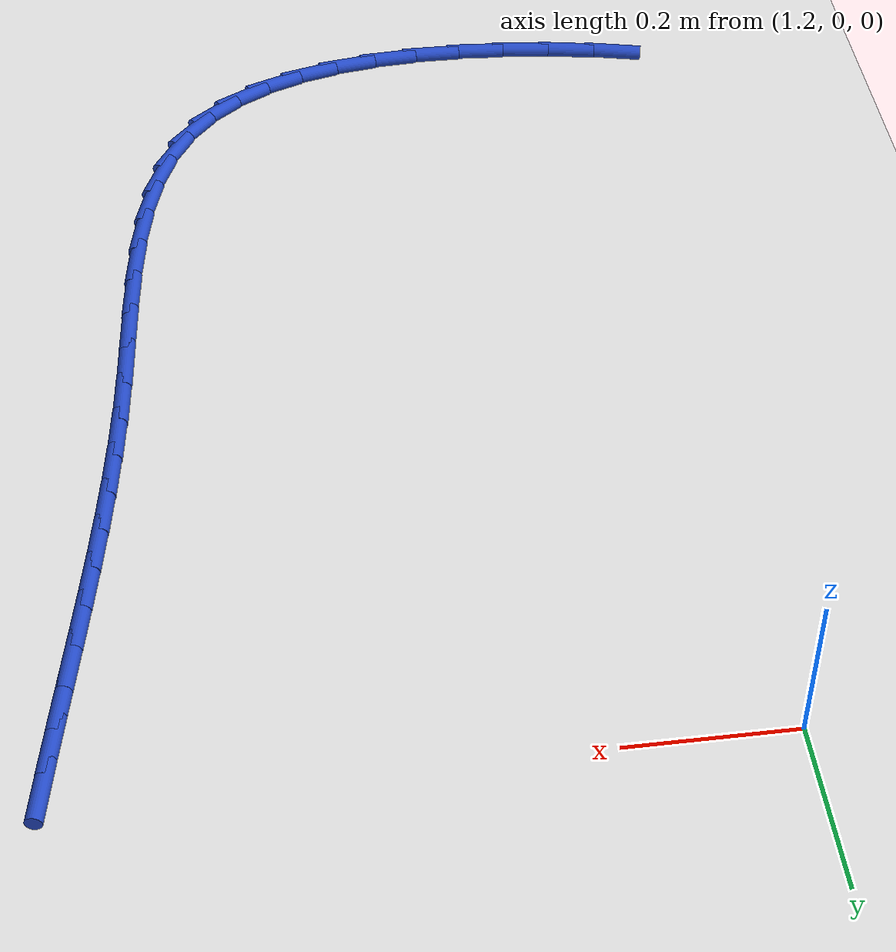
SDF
<sdf version="1.6">
 <world name="default">
  <model name="ground_plane">
   <static>1</static>
   <link name="link">
    <collision name="collision">
     <geometry><plane><normal>0 0 1</normal><size>100 100</size></plane></geometry>
     <surface><friction><ode><mu>100</mu><mu2>50</mu2></ode></friction></surface>
    </collision>
    <visual name="visual">
     <cast_shadows>0</cast_shadows>
     <geometry><plane><normal>0 0 1</normal><size>100 100</size></plane></geometry>
     <material>
      <script><uri>file://media/materials/scripts/gazebo.material</uri><name>Gazebo/WhiteGlow</name></script>
     </material>
    </visual>
   </link>
  </model>
  <model name="line">
   <link name="link_59">
    <pose>2.0095843211323805 -0.0143529401476441 0.01 0 1.57 1.3791129398174573</pose>
    <collision name="collision">
     <geometry><cylinder><radius>0.01</radius><length>0.08</length></cylinder></geometry>
    </collision>
    <visual name="visual">
     <material>
      <script><name>Gazebo/Blue</name><uri>file://media/materials/scripts/gazebo.material</uri></script>
     </material>
     <geometry><cylinder><radius>0.01</radius><length>0.08</length></cylinder></geometry>
    </visual>
   </link>
   <link name="link_60">
    <pose>1.9986518471679842 -0.07068671770957302 0.01 0 1.57 1.3734236351412863</pose>
    <collision name="collision">
     <geometry><cylinder><radius>0.01</radius><length>0.08</length></cylinder></geometry>
    </collision>
    <visual name="visual">
     <material>
      <script><name>Gazebo/Blue</name><uri>file://media/materials/scripts/gazebo.material</uri></script>
     </material>
     <geometry><cylinder><radius>0.01</radius><length>0.08</length></cylinder></geometry>
    </visual>
   </link>
   <link name="link_61">
    <pose>1.9874972401100446 -0.12646638598702598 0.01 0 1.57 1.3711099750935012</pose>
    <collision name="collision">
     <geometry><cylinder><radius>0.01</radius><length>0.08</length></cylinder></geometry>
    </collision>
    <visual name="visual">
     <material>
      <script><name>Gazebo/Blue</name><uri>file://media/materials/scripts/gazebo.material</uri></script>
     </material>
     <geometry><cylinder><radius>0.01</radius><length>0.08</length></cylinder></geometry>
    </visual>
   </link>
   <link name="link_62">
    <pose>1.9762726870712621 -0.18192817978360254 0.01 0 1.57 1.372250226316741</pose>
    <collision name="collision">
     <geometry><cylinder><radius>0.01</radius><length>0.08</length></cylinder></geometry>
    </collision>
    <visual name="visual">
     <material>
      <script><name>Gazebo/Blue</name><uri>file://media/materials/scripts/gazebo.material</uri></script>
     </material>
     <geometry><cylinder><radius>0.01</radius><length>0.08</length></cylinder></geometry>
    </visual>
   </link>
   <link name="link_63">
    <pose>1.965130375164333 -0.23730833390290268 0.01 0 1.57 1.3768497979431304</pose>
    <collision name="collision">
     <geometry><cylinder><radius>0.01</radius><length>0.08</length></cylinder></geometry>
    </collision>
    <visual name="visual">
     <material>
      <script><name>Gazebo/Blue</name><uri>file://media/materials/scripts/gazebo.material</uri></script>
     </material>
     <geometry><cylinder><radius>0.01</radius><length>0.08</length></cylinder></geometry>
    </visual>
   </link>
   <link name="link_64">
    <pose>1.9542224915019566 -0.2928430831485239 0.01 0 1.57 1.3848400308713296</pose>
    <collision name="collision">
     <geometry><cylinder><radius>0.01</radius><length>0.08</length></cylinder></geometry>
    </collision>
    <visual name="visual">
     <material>
      <script><name>Gazebo/Blue</name><uri>file://media/materials/scripts/gazebo.material</uri></script>
     </material>
     <geometry><cylinder><radius>0.01</radius><length>0.08</length></cylinder></geometry>
    </visual>
   </link>
   <link name="link_65">
    <pose>1.9437012231968303 -0.3487686623240661 0.01 0 1.57 1.3960797561616065</pose>
    <collision name="collision">
     <geometry><cylinder><radius>0.01</radius><length>0.08</length></cylinder></geometry>
    </collision>
    <visual name="visual">
     <material>
      <script><name>Gazebo/Blue</name><uri>file://media/materials/scripts/gazebo.material</uri></script>
     </material>
     <geometry><cylinder><radius>0.01</radius><length>0.08</length></cylinder></geometry>
    </visual>
   </link>
   <link name="link_66">
    <pose>1.9337187573616537 -0.40532130623312956 0.01 0 1.57 1.4103597302290953</pose>
    <collision name="collision">
     <geometry><cylinder><radius>0.01</radius><length>0.08</length></cylinder></geometry>
    </collision>
    <visual name="visual">
     <material>
      <script><name>Gazebo/Blue</name><uri>file://media/materials/scripts/gazebo.material</uri></script>
     </material>
     <geometry><cylinder><radius>0.01</radius><length>0.08</length></cylinder></geometry>
    </visual>
   </link>
   <link name="link_67">
    <pose>1.9244272811091234 -0.4627372496793114 0.01 0 1.57 1.4274099557024162</pose>
    <collision name="collision">
     <geometry><cylinder><radius>0.01</radius><length>0.08</length></cylinder></geometry>
    </collision>
    <visual name="visual">
     <material>
      <script><name>Gazebo/Blue</name><uri>file://media/materials/scripts/gazebo.material</uri></script>
     </material>
     <geometry><cylinder><radius>0.01</radius><length>0.08</length></cylinder></geometry>
    </visual>
   </link>
   <link name="link_68">
    <pose>1.9159789815519386 -0.521252727466212 0.01 0 1.57 1.446909722734398</pose>
    <collision name="collision">
     <geometry><cylinder><radius>0.01</radius><length>0.08</length></cylinder></geometry>
    </collision>
    <visual name="visual">
     <material>
      <script><name>Gazebo/Blue</name><uri>file://media/materials/scripts/gazebo.material</uri></script>
     </material>
     <geometry><cylinder><radius>0.01</radius><length>0.08</length></cylinder></geometry>
    </visual>
   </link>
   <link name="link_69">
    <pose>1.9085260458027968 -0.5811039743974301 0.01 0 1.57 1.4679009209417226</pose>
    <collision name="collision">
     <geometry><cylinder><radius>0.01</radius><length>0.08</length></cylinder></geometry>
    </collision>
    <visual name="visual">
     <material>
      <script><name>Gazebo/Blue</name><uri>file://media/materials/scripts/gazebo.material</uri></script>
     </material>
     <geometry><cylinder><radius>0.01</radius><length>0.08</length></cylinder></geometry>
    </visual>
   </link>
   <link name="link_70">
    <pose>1.9021872250785887 -0.6424909156907206 0.01 0 1.57 1.4802898391643775</pose>
    <collision name="collision">
     <geometry><cylinder><radius>0.01</radius><length>0.08</length></cylinder></geometry>
    </collision>
    <visual name="visual">
     <material>
      <script><name>Gazebo/Blue</name><uri>file://media/materials/scripts/gazebo.material</uri></script>
     </material>
     <geometry><cylinder><radius>0.01</radius><length>0.08</length></cylinder></geometry>
    </visual>
   </link>
   <link name="link_71">
    <pose>1.8965144372523848 -0.7049979260167341 0.01 0 1.57 1.4765286924217311</pose>
    <collision name="collision">
     <geometry><cylinder><radius>0.01</radius><length>0.08</length></cylinder></geometry>
    </collision>
    <visual name="visual">
     <material>
      <script><name>Gazebo/Blue</name><uri>file://media/materials/scripts/gazebo.material</uri></script>
     </material>
     <geometry><cylinder><radius>0.01</radius><length>0.08</length></cylinder></geometry>
    </visual>
   </link>
   <link name="link_72">
    <pose>1.8905865039661023 -0.767695622965504 0.01 0 1.57 1.4563745280890752</pose>
    <collision name="collision">
     <geometry><cylinder><radius>0.01</radius><length>0.08</length></cylinder></geometry>
    </collision>
    <visual name="visual">
     <material>
      <script><name>Gazebo/Blue</name><uri>file://media/materials/scripts/gazebo.material</uri></script>
     </material>
     <geometry><cylinder><radius>0.01</radius><length>0.08</length></cylinder></geometry>
    </visual>
   </link>
   <link name="link_73">
    <pose>1.8834677506340605 -0.8296388820029886 0.01 0 1.57 1.4185201867658899</pose>
    <collision name="collision">
     <geometry><cylinder><radius>0.01</radius><length>0.08</length></cylinder></geometry>
    </collision>
    <visual name="visual">
     <material>
      <script><name>Gazebo/Blue</name><uri>file://media/materials/scripts/gazebo.material</uri></script>
     </material>
     <geometry><cylinder><radius>0.01</radius><length>0.08</length></cylinder></geometry>
    </visual>
   </link>
   <link name="link_74">
    <pose>1.8742225026705797 -0.8898825785951471 0.01 0 1.57 1.3602878190782957</pose>
    <collision name="collision">
     <geometry><cylinder><radius>0.01</radius><length>0.08</length></cylinder></geometry>
    </collision>
    <visual name="visual">
     <material>
      <script><name>Gazebo/Blue</name><uri>file://media/materials/scripts/gazebo.material</uri></script>
     </material>
     <geometry><cylinder><radius>0.01</radius><length>0.08</length></cylinder></geometry>
    </visual>
   </link>
   <link name="link_75">
    <pose>1.8619150854899804 -0.9474815882079358 0.01 0 1.57 1.2775992929452322</pose>
    <collision name="collision">
     <geometry><cylinder><radius>0.01</radius><length>0.08</length></cylinder></geometry>
    </collision>
    <visual name="visual">
     <material>
      <script><name>Gazebo/Blue</name><uri>file://media/materials/scripts/gazebo.material</uri></script>
     </material>
     <geometry><cylinder><radius>0.01</radius><length>0.08</length></cylinder></geometry>
    </visual>
   </link>
   <link name="link_76">
    <pose>1.8456098245065828 -1.0014907863073144 0.01 0 1.57 1.1652980832420208</pose>
    <collision name="collision">
     <geometry><cylinder><radius>0.01</radius><length>0.08</length></cylinder></geometry>
    </collision>
    <visual name="visual">
     <material>
      <script><name>Gazebo/Blue</name><uri>file://media/materials/scripts/gazebo.material</uri></script>
     </material>
     <geometry><cylinder><radius>0.01</radius><length>0.08</length></cylinder></geometry>
    </visual>
   </link>
   <link name="link_77">
    <pose>1.824371045134708 -1.0509650483592412 0.01 0 1.57 1.0185708126924162</pose>
    <collision name="collision">
     <geometry><cylinder><radius>0.01</radius><length>0.08</length></cylinder></geometry>
    </collision>
    <visual name="visual">
     <material>
      <script><name>Gazebo/Blue</name><uri>file://media/materials/scripts/gazebo.material</uri></script>
     </material>
     <geometry><cylinder><radius>0.01</radius><length>0.08</length></cylinder></geometry>
    </visual>
   </link>
   <link name="link_78">
    <pose>1.797263072788674 -1.0949592498296745 0.01 0 1.57 0.838064857910759</pose>
    <collision name="collision">
     <geometry><cylinder><radius>0.01</radius><length>0.08</length></cylinder></geometry>
    </collision>
    <visual name="visual">
     <material>
      <script><name>Gazebo/Blue</name><uri>file://media/materials/scripts/gazebo.material</uri></script>
     </material>
     <geometry><cylinder><radius>0.01</radius><length>0.08</length></cylinder></geometry>
    </visual>
   </link>
   <link name="link_79">
    <pose>1.7634134230340162 -1.1325762983048095 0.01 0 1.57 0.6537173596721162</pose>
    <collision name="collision">
     <geometry><cylinder><radius>0.01</radius><length>0.08</length></cylinder></geometry>
    </collision>
    <visual name="visual">
     <material>
      <script><name>Gazebo/Blue</name><uri>file://media/materials/scripts/gazebo.material</uri></script>
     </material>
     <geometry><cylinder><radius>0.01</radius><length>0.08</length></cylinder></geometry>
    </visual>
   </link>
   <link name="link_80">
    <pose>1.722881380145897 -1.1636273577341367 0.01 0 1.57 0.4910559342195353</pose>
    <collision name="collision">
     <geometry><cylinder><radius>0.01</radius><length>0.08</length></cylinder></geometry>
    </collision>
    <visual name="visual">
     <material>
      <script><name>Gazebo/Blue</name><uri>file://media/materials/scripts/gazebo.material</uri></script>
     </material>
     <geometry><cylinder><radius>0.01</radius><length>0.08</length></cylinder></geometry>
    </visual>
   </link>
   <link name="link_81">
    <pose>1.6764365412175275 -1.1884635152992888 0.01 0 1.57 0.35275808394047636</pose>
    <collision name="collision">
     <geometry><cylinder><radius>0.01</radius><length>0.08</length></cylinder></geometry>
    </collision>
    <visual name="visual">
     <material>
      <script><name>Gazebo/Blue</name><uri>file://media/materials/scripts/gazebo.material</uri></script>
     </material>
     <geometry><cylinder><radius>0.01</radius><length>0.08</length></cylinder></geometry>
    </visual>
   </link>
   <link name="link_82">
    <pose>1.624866377264857 -1.207449444514412 0.01 0 1.57 0.2369389393484709</pose>
    <collision name="collision">
     <geometry><cylinder><radius>0.01</radius><length>0.08</length></cylinder></geometry>
    </collision>
    <visual name="visual">
     <material>
      <script><name>Gazebo/Blue</name><uri>file://media/materials/scripts/gazebo.material</uri></script>
     </material>
     <geometry><cylinder><radius>0.01</radius><length>0.08</length></cylinder></geometry>
    </visual>
   </link>
   <link name="link_83">
    <pose>1.5689583593038319 -1.2209498188936527 0.01 0 1.57 0.14000828706682955</pose>
    <collision name="collision">
     <geometry><cylinder><radius>0.01</radius><length>0.08</length></cylinder></geometry>
    </collision>
    <visual name="visual">
     <material>
      <script><name>Gazebo/Blue</name><uri>file://media/materials/scripts/gazebo.material</uri></script>
     </material>
     <geometry><cylinder><radius>0.01</radius><length>0.08</length></cylinder></geometry>
    </visual>
   </link>
   <link name="link_84">
    <pose>1.5094999583504003 -1.229329311951157 0.01 0 1.57 0.05816653301180728</pose>
    <collision name="collision">
     <geometry><cylinder><radius>0.01</radius><length>0.08</length></cylinder></geometry>
    </collision>
    <visual name="visual">
     <material>
      <script><name>Gazebo/Blue</name><uri>file://media/materials/scripts/gazebo.material</uri></script>
     </material>
     <geometry><cylinder><radius>0.01</radius><length>0.08</length></cylinder></geometry>
    </visual>
   </link>
   <link name="link_85">
    <pose>1.4472786454205089 -1.2329525972010715 0.01 0 1.57 -0.011966529864675546</pose>
    <collision name="collision">
     <geometry><cylinder><radius>0.01</radius><length>0.08</length></cylinder></geometry>
    </collision>
    <visual name="visual">
     <material>
      <script><name>Gazebo/Blue</name><uri>file://media/materials/scripts/gazebo.material</uri></script>
     </material>
     <geometry><cylinder><radius>0.01</radius><length>0.08</length></cylinder></geometry>
    </visual>
   </link>
   <link name="link_86">
    <pose>1.3830818915301073 -1.232184348157543 0.01 0 1.57 -0.07320579905215552</pose>
    <collision name="collision">
     <geometry><cylinder><radius>0.01</radius><length>0.08</length></cylinder></geometry>
    </collision>
    <visual name="visual">
     <material>
      <script><name>Gazebo/Blue</name><uri>file://media/materials/scripts/gazebo.material</uri></script>
     </material>
     <geometry><cylinder><radius>0.01</radius><length>0.08</length></cylinder></geometry>
    </visual>
   </link>
   <link name="link_87">
    <pose>1.3176971676951412 -1.2273892383347167 0.01 0 1.57 -0.12785791092530657</pose>
    <collision name="collision">
     <geometry><cylinder><radius>0.01</radius><length>0.08</length></cylinder></geometry>
    </collision>
    <visual name="visual">
     <material>
      <script><name>Gazebo/Blue</name><uri>file://media/materials/scripts/gazebo.material</uri></script>
     </material>
     <geometry><cylinder><radius>0.01</radius><length>0.08</length></cylinder></geometry>
    </visual>
   </link>
   <link name="link_88">
    <pose>1.2519119449315592 -1.2189319412467394 0.01 0 1.57 -0.177843001133076</pose>
    <collision name="collision">
     <geometry><cylinder><radius>0.01</radius><length>0.08</length></cylinder></geometry>
    </collision>
    <visual name="visual">
     <material>
      <script><name>Gazebo/Blue</name><uri>file://media/materials/scripts/gazebo.material</uri></script>
     </material>
     <geometry><cylinder><radius>0.01</radius><length>0.08</length></cylinder></geometry>
    </visual>
   </link>
   <link name="link_89">
    <pose>1.186513694255308 -1.2071771304077576 0.01 0 1.57 -0.22482841486433147</pose>
    <collision name="collision">
     <geometry><cylinder><radius>0.01</radius><length>0.08</length></cylinder></geometry>
    </collision>
    <visual name="visual">
     <material>
      <script><name>Gazebo/Blue</name><uri>file://media/materials/scripts/gazebo.material</uri></script>
     </material>
     <geometry><cylinder><radius>0.01</radius><length>0.08</length></cylinder></geometry>
    </visual>
   </link>
  </model>
 </world>
</sdf>
